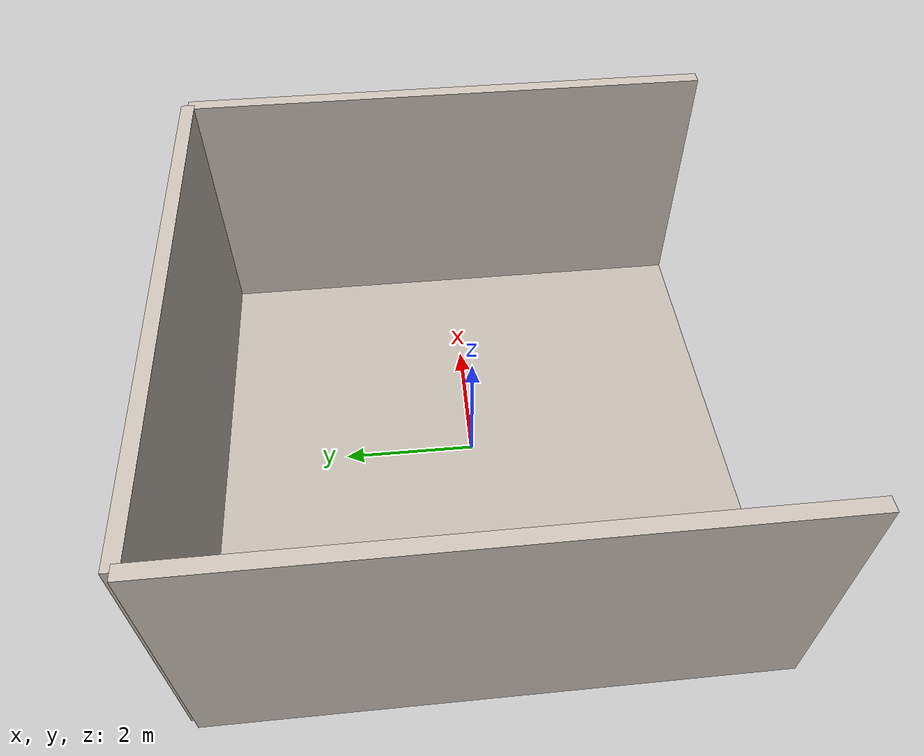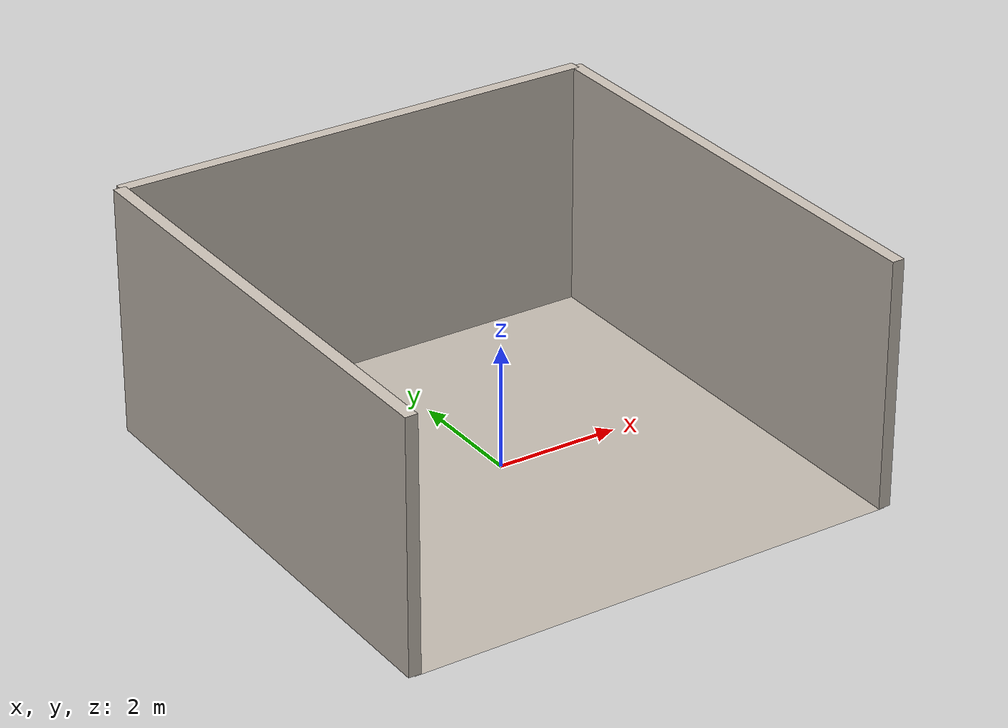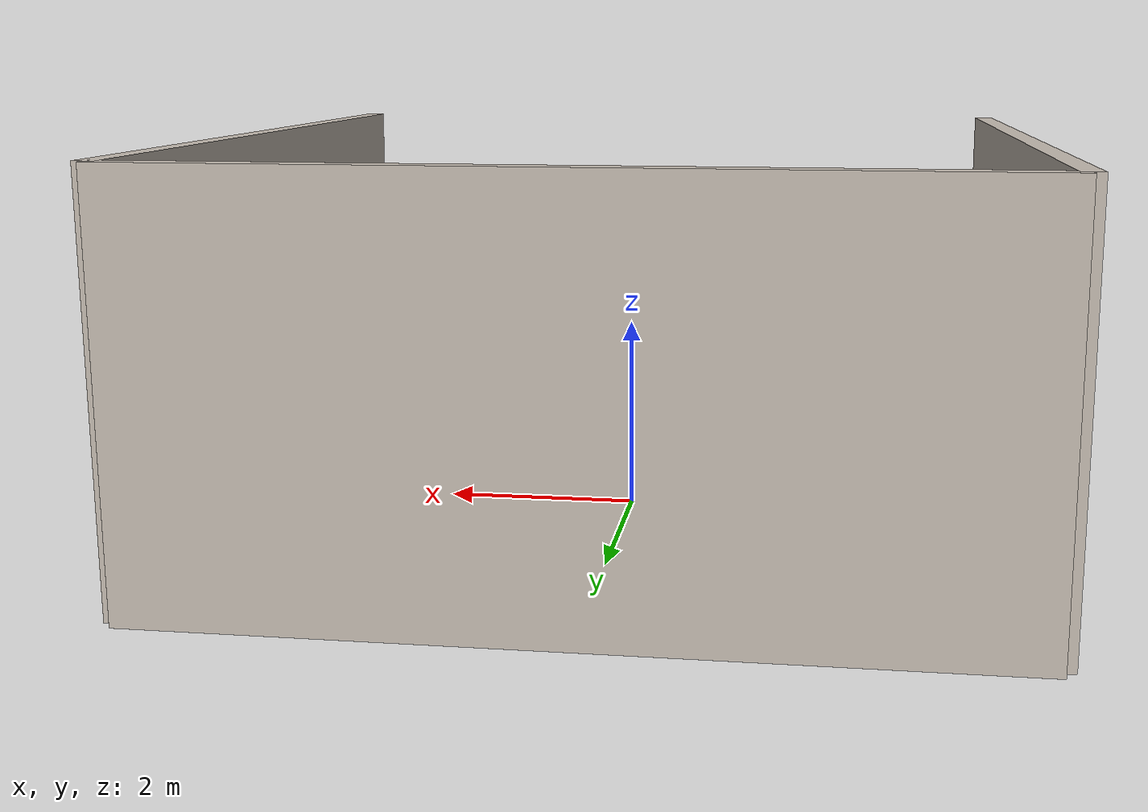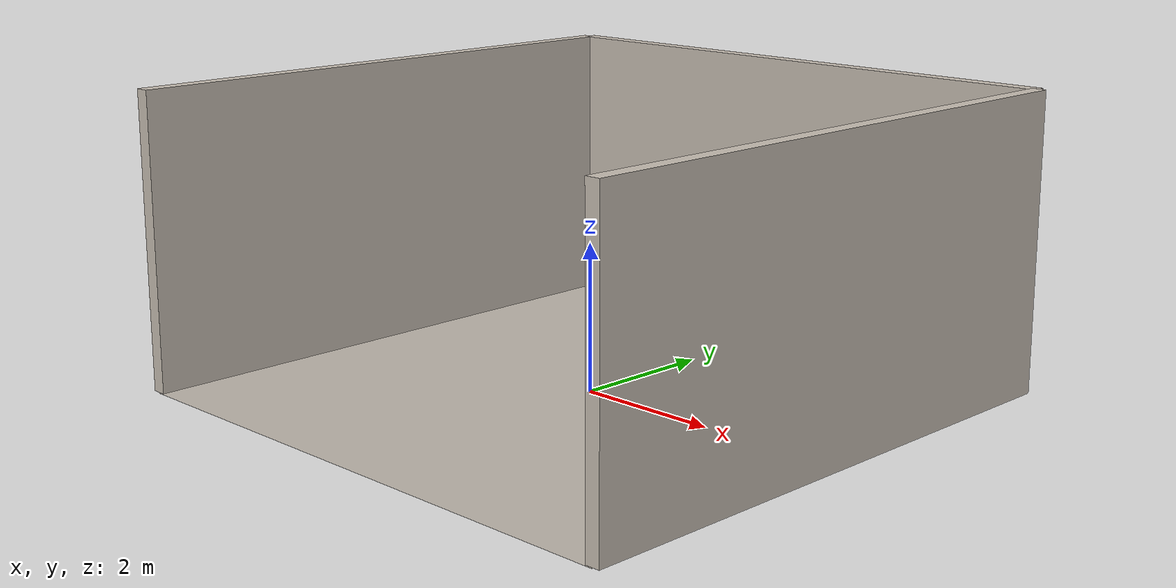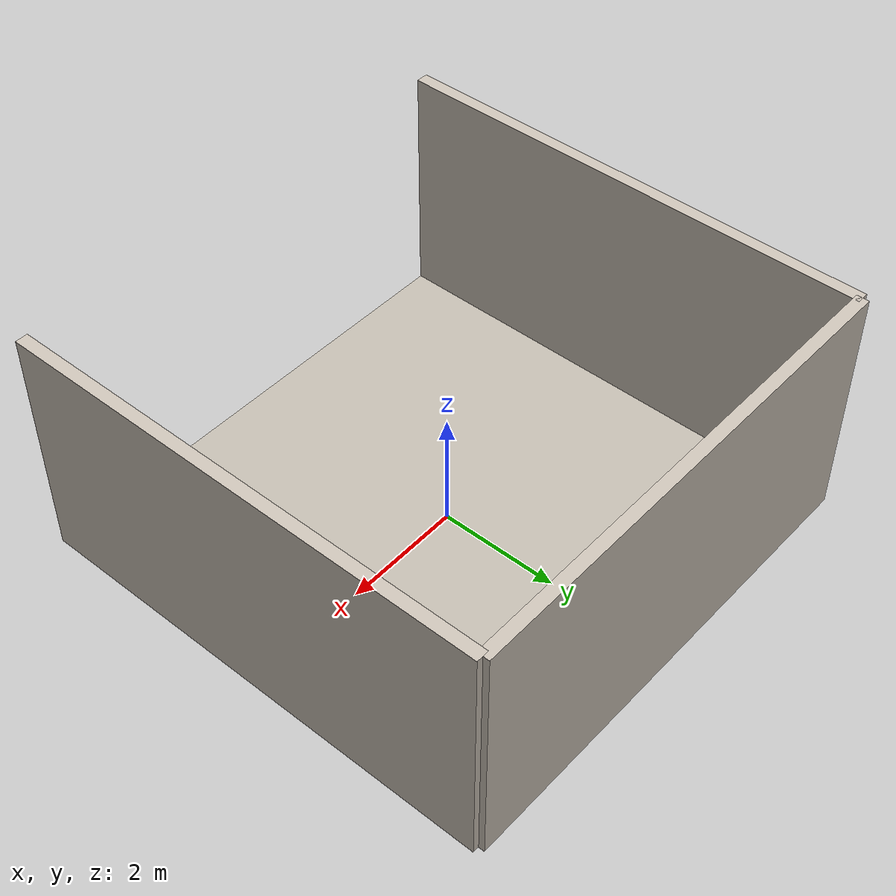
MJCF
<mujoco>
  <compiler meshdir="assets" texturedir="assets"/>

  <asset>
    <texture type="2d" file="floor_homography.png"/>
    <material name="floor" texture="floor_homography"/>
    <material name="offwhite" rgba="0.78431373 0.74901961 0.70588235 1"/>
  </asset>

  <worldbody>
    <body name="room" pos="0 0 0">
        <geom name="floor" size="4 4 0.05" type="plane" material="floor"/>
        <geom name="wall_right" pos="4 0 2" size="0.1 4 2" type="box" material="offwhite"/>
        <geom name="wall_left" pos="-4 0 2" size="0.1 4 2" type="box" material="offwhite"/>
        <geom name="wall_front" pos="0 4 2" size="4 0.1 2" type="box" material="offwhite"/>
    </body>
  </worldbody>
</mujoco>
